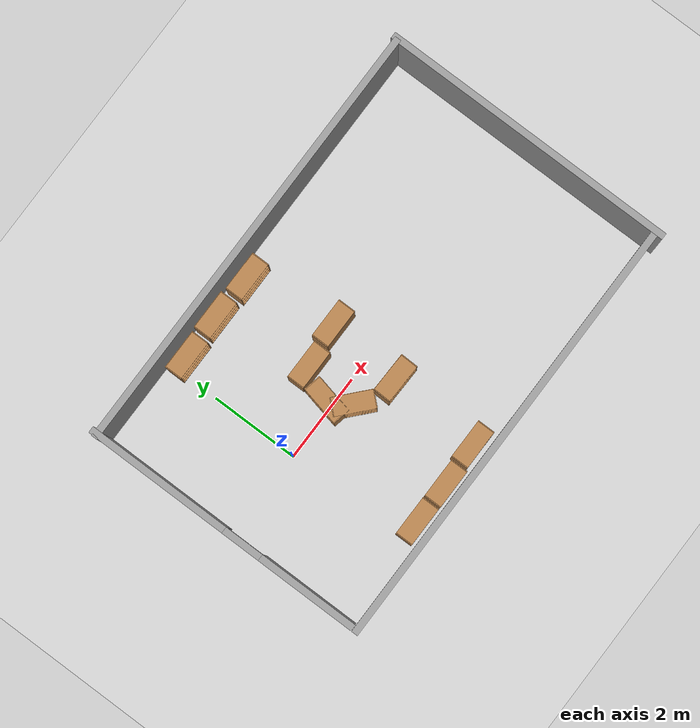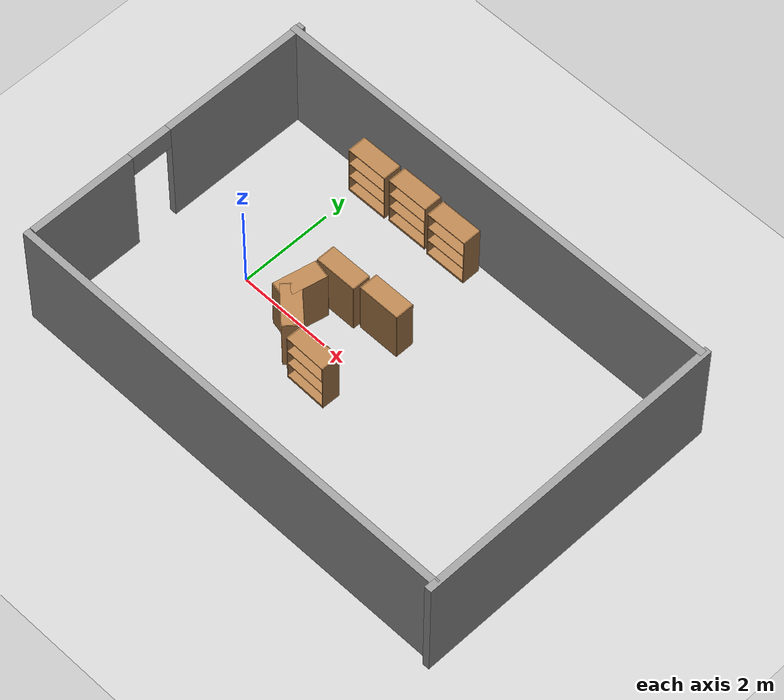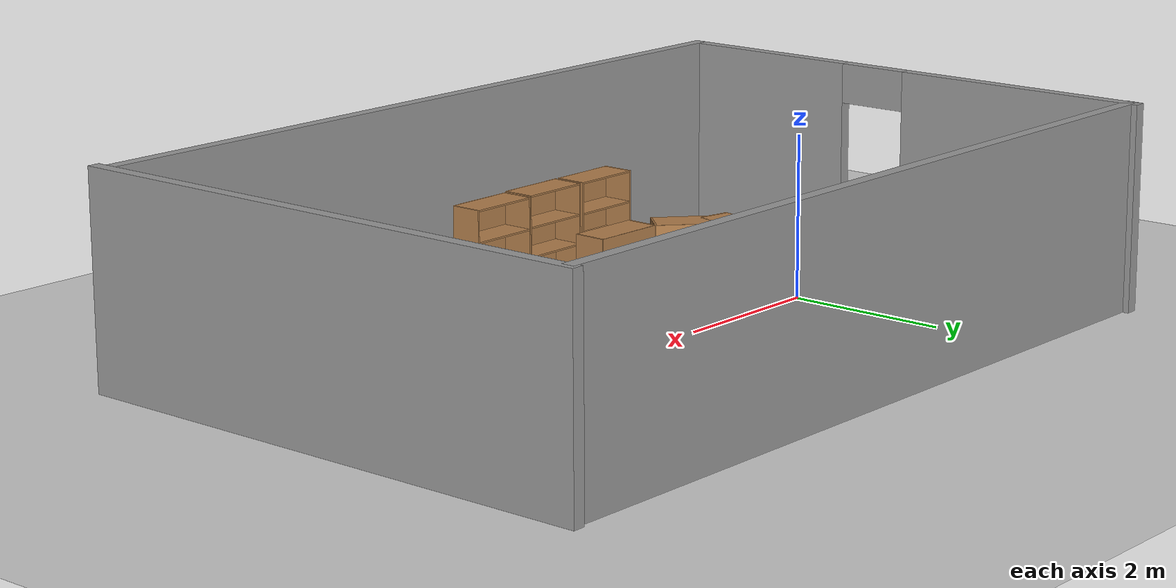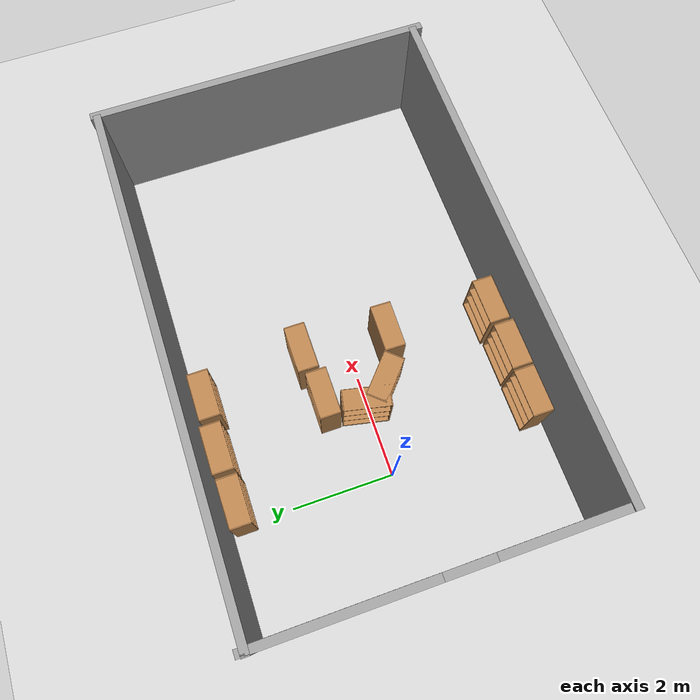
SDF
<sdf version="1.6">
 <world name="default">
  <model name="ground_plane">
   <static>1</static>
   <link name="link">
    <collision name="collision">
     <geometry><plane><normal>0 0 1</normal><size>100 100</size></plane></geometry>
     <surface><friction><ode><mu>100</mu><mu2>50</mu2></ode></friction></surface>
    </collision>
    <visual name="visual">
     <cast_shadows>0</cast_shadows>
     <geometry><plane><normal>0 0 1</normal><size>100 100</size></plane></geometry>
     <material>
      <script><uri>file://media/materials/scripts/gazebo.material</uri><name>Gazebo/Grey</name></script>
     </material>
    </visual>
   </link>
  </model>
  <model name="lab">
   <pose>2.92212 0.020842 0 0 -0 0</pose>
   <link name="Wall_27">
    <collision name="Wall_27_Collision">
     <geometry><box><size>10 0.15 2.5</size></box></geometry>
     <pose>0 0 1.25 0 -0 0</pose>
    </collision>
    <visual name="Wall_27_Visual">
     <pose>0 0 1.25 0 -0 0</pose>
     <geometry><box><size>10 0.15 2.5</size></box></geometry>
     <material>
      <script><uri>file://media/materials/scripts/gazebo.material</uri><name>Gazebo/Grey</name></script>
      <ambient>1 1 1 1</ambient>
     </material>
    </visual>
    <pose>-0.035542 3.23858 0 0 -0 0</pose>
   </link>
   <link name="Wall_31">
    <collision name="Wall_31_Collision">
     <geometry><box><size>6.75 0.15 2.5</size></box></geometry>
     <pose>0 0 1.25 0 -0 0</pose>
    </collision>
    <visual name="Wall_31_Visual">
     <pose>0 0 1.25 0 -0 0</pose>
     <geometry><box><size>6.75 0.15 2.5</size></box></geometry>
     <material>
      <script><uri>file://media/materials/scripts/gazebo.material</uri><name>Gazebo/Grey</name></script>
      <ambient>1 1 1 1</ambient>
     </material>
    </visual>
    <pose>4.96054 -0.014164 0 0 0 -1.5708</pose>
   </link>
   <link name="Wall_34">
    <collision name="Wall_34_Collision">
     <geometry><box><size>10 0.15 2.5</size></box></geometry>
     <pose>0 0 1.25 0 -0 0</pose>
    </collision>
    <visual name="Wall_34_Visual">
     <pose>0 0 1.25 0 -0 0</pose>
     <geometry><box><size>10 0.15 2.5</size></box></geometry>
     <material>
      <script><uri>file://media/materials/scripts/gazebo.material</uri><name>Gazebo/Grey</name></script>
      <ambient>1 1 1 1</ambient>
     </material>
    </visual>
    <pose>-0.020866 -3.20031 0 0 -0 3.14159</pose>
   </link>
   <link name="Wall_37">
    <pose>-4.94545 0.139164 0 0 0 -1.5708</pose>
    <visual name="Wall_37_Visual_0">
     <pose>-1.59673 0 1.25 0 -0 0</pose>
     <geometry><box><size>3.30655 0.15 2.5</size></box></geometry>
     <material>
      <script><uri>file://media/materials/scripts/gazebo.material</uri><name>Gazebo/Grey</name></script>
      <ambient>1 1 1 1</ambient>
     </material>
    </visual>
    <collision name="Wall_37_Collision_0">
     <geometry><box><size>3.30655 0.15 2.5</size></box></geometry>
     <pose>-1.59673 0 1.25 0 -0 0</pose>
    </collision>
    <visual name="Wall_37_Visual_1">
     <pose>2.10327 0 1.25 0 -0 0</pose>
     <geometry><box><size>2.29345 0.15 2.5</size></box></geometry>
     <material>
      <script><uri>file://media/materials/scripts/gazebo.material</uri><name>Gazebo/Grey</name></script>
      <ambient>1 1 1 1</ambient>
     </material>
    </visual>
    <collision name="Wall_37_Collision_1">
     <geometry><box><size>2.29345 0.15 2.5</size></box></geometry>
     <pose>2.10327 0 1.25 0 -0 0</pose>
    </collision>
    <visual name="Wall_37_Visual_2">
     <pose>0.506549 0 2.25 0 -0 0</pose>
     <geometry><box><size>0.9 0.15 0.5</size></box></geometry>
     <material>
      <script><uri>file://media/materials/scripts/gazebo.material</uri><name>Gazebo/Grey</name></script>
      <ambient>1 1 1 1</ambient>
     </material>
    </visual>
    <collision name="Wall_37_Collision_2">
     <geometry><box><size>0.9 0.15 0.5</size></box></geometry>
     <pose>0.506549 0 2.25 0 -0 0</pose>
    </collision>
   </link>
   <static>1</static>
  </model>
  <model name="bookshelf_0_clone_3">
   <static>1</static>
   <link name="link">
    <inertial><mass>1</mass></inertial>
    <collision name="back">
     <pose>0 0.005 0.6 0 -0 0</pose>
     <geometry><box><size>0.9 0.01 1.2</size></box></geometry>
    </collision>
    <visual name="visual1">
     <pose>0 0.005 0.6 0 -0 0</pose>
     <geometry><box><size>0.9 0.01 1.2</size></box></geometry>
     <material>
      <script><uri>file://media/materials/scripts/gazebo.material</uri><name>Gazebo/Wood</name></script>
     </material>
    </visual>
    <collision name="left_side">
     <pose>0.45 -0.195 0.6 0 -0 0</pose>
     <geometry><box><size>0.02 0.4 1.2</size></box></geometry>
    </collision>
    <visual name="visual2">
     <pose>0.45 -0.195 0.6 0 -0 0</pose>
     <geometry><box><size>0.02 0.4 1.2</size></box></geometry>
     <material>
      <script><uri>file://media/materials/scripts/gazebo.material</uri><name>Gazebo/Wood</name></script>
     </material>
    </visual>
    <collision name="right_side">
     <pose>-0.45 -0.195 0.6 0 -0 0</pose>
     <geometry><box><size>0.02 0.4 1.2</size></box></geometry>
    </collision>
    <visual name="visual3">
     <pose>-0.45 -0.195 0.6 0 -0 0</pose>
     <geometry><box><size>0.02 0.4 1.2</size></box></geometry>
     <material>
      <script><uri>file://media/materials/scripts/gazebo.material</uri><name>Gazebo/Wood</name></script>
     </material>
    </visual>
    <collision name="bottom">
     <pose>0 -0.195 0.03 0 -0 0</pose>
     <geometry><box><size>0.88 0.4 0.06</size></box></geometry>
    </collision>
    <visual name="visual4">
     <pose>0 -0.195 0.03 0 -0 0</pose>
     <geometry><box><size>0.88 0.4 0.06</size></box></geometry>
     <material>
      <script><uri>file://media/materials/scripts/gazebo.material</uri><name>Gazebo/Wood</name></script>
     </material>
    </visual>
    <collision name="top">
     <pose>0 -0.195 1.19 0 -0 0</pose>
     <geometry><box><size>0.88 0.4 0.02</size></box></geometry>
    </collision>
    <visual name="visual5">
     <pose>0 -0.195 1.19 0 -0 0</pose>
     <geometry><box><size>0.88 0.4 0.02</size></box></geometry>
     <material>
      <script><uri>file://media/materials/scripts/gazebo.material</uri><name>Gazebo/Wood</name></script>
     </material>
    </visual>
    <collision name="low_shelf">
     <pose>0 -0.195 0.43 0 -0 0</pose>
     <geometry><box><size>0.88 0.4 0.02</size></box></geometry>
    </collision>
    <visual name="visual6">
     <pose>0 -0.195 0.43 0 -0 0</pose>
     <geometry><box><size>0.88 0.4 0.02</size></box></geometry>
     <material>
      <script><uri>file://media/materials/scripts/gazebo.material</uri><name>Gazebo/Wood</name></script>
     </material>
    </visual>
    <collision name="high_shelf">
     <pose>0 -0.195 0.8 0 -0 0</pose>
     <geometry><box><size>0.88 0.4 0.02</size></box></geometry>
    </collision>
    <visual name="visual7">
     <pose>0 -0.195 0.8 0 -0 0</pose>
     <geometry><box><size>0.88 0.4 0.02</size></box></geometry>
     <material>
      <script><uri>file://media/materials/scripts/gazebo.material</uri><name>Gazebo/Wood</name></script>
     </material>
    </visual>
   </link>
   <pose>2.33101 3.09869 0 0 -0 0</pose>
  </model>
  <model name="bookshelf_0_clone_4">
   <static>1</static>
   <link name="link">
    <inertial><mass>1</mass></inertial>
    <collision name="back">
     <pose>0 0.005 0.6 0 -0 0</pose>
     <geometry><box><size>0.9 0.01 1.2</size></box></geometry>
    </collision>
    <visual name="visual1">
     <pose>0 0.005 0.6 0 -0 0</pose>
     <geometry><box><size>0.9 0.01 1.2</size></box></geometry>
     <material>
      <script><uri>file://media/materials/scripts/gazebo.material</uri><name>Gazebo/Wood</name></script>
     </material>
    </visual>
    <collision name="left_side">
     <pose>0.45 -0.195 0.6 0 -0 0</pose>
     <geometry><box><size>0.02 0.4 1.2</size></box></geometry>
    </collision>
    <visual name="visual2">
     <pose>0.45 -0.195 0.6 0 -0 0</pose>
     <geometry><box><size>0.02 0.4 1.2</size></box></geometry>
     <material>
      <script><uri>file://media/materials/scripts/gazebo.material</uri><name>Gazebo/Wood</name></script>
     </material>
    </visual>
    <collision name="right_side">
     <pose>-0.45 -0.195 0.6 0 -0 0</pose>
     <geometry><box><size>0.02 0.4 1.2</size></box></geometry>
    </collision>
    <visual name="visual3">
     <pose>-0.45 -0.195 0.6 0 -0 0</pose>
     <geometry><box><size>0.02 0.4 1.2</size></box></geometry>
     <material>
      <script><uri>file://media/materials/scripts/gazebo.material</uri><name>Gazebo/Wood</name></script>
     </material>
    </visual>
    <collision name="bottom">
     <pose>0 -0.195 0.03 0 -0 0</pose>
     <geometry><box><size>0.88 0.4 0.06</size></box></geometry>
    </collision>
    <visual name="visual4">
     <pose>0 -0.195 0.03 0 -0 0</pose>
     <geometry><box><size>0.88 0.4 0.06</size></box></geometry>
     <material>
      <script><uri>file://media/materials/scripts/gazebo.material</uri><name>Gazebo/Wood</name></script>
     </material>
    </visual>
    <collision name="top">
     <pose>0 -0.195 1.19 0 -0 0</pose>
     <geometry><box><size>0.88 0.4 0.02</size></box></geometry>
    </collision>
    <visual name="visual5">
     <pose>0 -0.195 1.19 0 -0 0</pose>
     <geometry><box><size>0.88 0.4 0.02</size></box></geometry>
     <material>
      <script><uri>file://media/materials/scripts/gazebo.material</uri><name>Gazebo/Wood</name></script>
     </material>
    </visual>
    <collision name="low_shelf">
     <pose>0 -0.195 0.43 0 -0 0</pose>
     <geometry><box><size>0.88 0.4 0.02</size></box></geometry>
    </collision>
    <visual name="visual6">
     <pose>0 -0.195 0.43 0 -0 0</pose>
     <geometry><box><size>0.88 0.4 0.02</size></box></geometry>
     <material>
      <script><uri>file://media/materials/scripts/gazebo.material</uri><name>Gazebo/Wood</name></script>
     </material>
    </visual>
    <collision name="high_shelf">
     <pose>0 -0.195 0.8 0 -0 0</pose>
     <geometry><box><size>0.88 0.4 0.02</size></box></geometry>
    </collision>
    <visual name="visual7">
     <pose>0 -0.195 0.8 0 -0 0</pose>
     <geometry><box><size>0.88 0.4 0.02</size></box></geometry>
     <material>
      <script><uri>file://media/materials/scripts/gazebo.material</uri><name>Gazebo/Wood</name></script>
     </material>
    </visual>
   </link>
   <pose>1.31983 3.13726 0 0 -0 0</pose>
  </model>
  <model name="bookshelf_0_clone_5">
   <static>1</static>
   <link name="link">
    <inertial><mass>1</mass></inertial>
    <collision name="back">
     <pose>0 0.005 0.6 0 -0 0</pose>
     <geometry><box><size>0.9 0.01 1.2</size></box></geometry>
    </collision>
    <visual name="visual1">
     <pose>0 0.005 0.6 0 -0 0</pose>
     <geometry><box><size>0.9 0.01 1.2</size></box></geometry>
     <material>
      <script><uri>file://media/materials/scripts/gazebo.material</uri><name>Gazebo/Wood</name></script>
     </material>
    </visual>
    <collision name="left_side">
     <pose>0.45 -0.195 0.6 0 -0 0</pose>
     <geometry><box><size>0.02 0.4 1.2</size></box></geometry>
    </collision>
    <visual name="visual2">
     <pose>0.45 -0.195 0.6 0 -0 0</pose>
     <geometry><box><size>0.02 0.4 1.2</size></box></geometry>
     <material>
      <script><uri>file://media/materials/scripts/gazebo.material</uri><name>Gazebo/Wood</name></script>
     </material>
    </visual>
    <collision name="right_side">
     <pose>-0.45 -0.195 0.6 0 -0 0</pose>
     <geometry><box><size>0.02 0.4 1.2</size></box></geometry>
    </collision>
    <visual name="visual3">
     <pose>-0.45 -0.195 0.6 0 -0 0</pose>
     <geometry><box><size>0.02 0.4 1.2</size></box></geometry>
     <material>
      <script><uri>file://media/materials/scripts/gazebo.material</uri><name>Gazebo/Wood</name></script>
     </material>
    </visual>
    <collision name="bottom">
     <pose>0 -0.195 0.03 0 -0 0</pose>
     <geometry><box><size>0.88 0.4 0.06</size></box></geometry>
    </collision>
    <visual name="visual4">
     <pose>0 -0.195 0.03 0 -0 0</pose>
     <geometry><box><size>0.88 0.4 0.06</size></box></geometry>
     <material>
      <script><uri>file://media/materials/scripts/gazebo.material</uri><name>Gazebo/Wood</name></script>
     </material>
    </visual>
    <collision name="top">
     <pose>0 -0.195 1.19 0 -0 0</pose>
     <geometry><box><size>0.88 0.4 0.02</size></box></geometry>
    </collision>
    <visual name="visual5">
     <pose>0 -0.195 1.19 0 -0 0</pose>
     <geometry><box><size>0.88 0.4 0.02</size></box></geometry>
     <material>
      <script><uri>file://media/materials/scripts/gazebo.material</uri><name>Gazebo/Wood</name></script>
     </material>
    </visual>
    <collision name="low_shelf">
     <pose>0 -0.195 0.43 0 -0 0</pose>
     <geometry><box><size>0.88 0.4 0.02</size></box></geometry>
    </collision>
    <visual name="visual6">
     <pose>0 -0.195 0.43 0 -0 0</pose>
     <geometry><box><size>0.88 0.4 0.02</size></box></geometry>
     <material>
      <script><uri>file://media/materials/scripts/gazebo.material</uri><name>Gazebo/Wood</name></script>
     </material>
    </visual>
    <collision name="high_shelf">
     <pose>0 -0.195 0.8 0 -0 0</pose>
     <geometry><box><size>0.88 0.4 0.02</size></box></geometry>
    </collision>
    <visual name="visual7">
     <pose>0 -0.195 0.8 0 -0 0</pose>
     <geometry><box><size>0.88 0.4 0.02</size></box></geometry>
     <material>
      <script><uri>file://media/materials/scripts/gazebo.material</uri><name>Gazebo/Wood</name></script>
     </material>
    </visual>
   </link>
   <pose>0.321179 3.10913 0 0 -0 0</pose>
  </model>
  <model name="bookshelf_0_clone_6_clone_clone_3">
   <static>1</static>
   <link name="link">
    <inertial><mass>1</mass></inertial>
    <collision name="back">
     <pose>0 0.005 0.6 0 -0 0</pose>
     <geometry><box><size>0.9 0.01 1.2</size></box></geometry>
    </collision>
    <visual name="visual1">
     <pose>0 0.005 0.6 0 -0 0</pose>
     <geometry><box><size>0.9 0.01 1.2</size></box></geometry>
     <material>
      <script><uri>file://media/materials/scripts/gazebo.material</uri><name>Gazebo/Wood</name></script>
     </material>
    </visual>
    <collision name="left_side">
     <pose>0.45 -0.195 0.6 0 -0 0</pose>
     <geometry><box><size>0.02 0.4 1.2</size></box></geometry>
    </collision>
    <visual name="visual2">
     <pose>0.45 -0.195 0.6 0 -0 0</pose>
     <geometry><box><size>0.02 0.4 1.2</size></box></geometry>
     <material>
      <script><uri>file://media/materials/scripts/gazebo.material</uri><name>Gazebo/Wood</name></script>
     </material>
    </visual>
    <collision name="right_side">
     <pose>-0.45 -0.195 0.6 0 -0 0</pose>
     <geometry><box><size>0.02 0.4 1.2</size></box></geometry>
    </collision>
    <visual name="visual3">
     <pose>-0.45 -0.195 0.6 0 -0 0</pose>
     <geometry><box><size>0.02 0.4 1.2</size></box></geometry>
     <material>
      <script><uri>file://media/materials/scripts/gazebo.material</uri><name>Gazebo/Wood</name></script>
     </material>
    </visual>
    <collision name="bottom">
     <pose>0 -0.195 0.03 0 -0 0</pose>
     <geometry><box><size>0.88 0.4 0.06</size></box></geometry>
    </collision>
    <visual name="visual4">
     <pose>0 -0.195 0.03 0 -0 0</pose>
     <geometry><box><size>0.88 0.4 0.06</size></box></geometry>
     <material>
      <script><uri>file://media/materials/scripts/gazebo.material</uri><name>Gazebo/Wood</name></script>
     </material>
    </visual>
    <collision name="top">
     <pose>0 -0.195 1.19 0 -0 0</pose>
     <geometry><box><size>0.88 0.4 0.02</size></box></geometry>
    </collision>
    <visual name="visual5">
     <pose>0 -0.195 1.19 0 -0 0</pose>
     <geometry><box><size>0.88 0.4 0.02</size></box></geometry>
     <material>
      <script><uri>file://media/materials/scripts/gazebo.material</uri><name>Gazebo/Wood</name></script>
     </material>
    </visual>
    <collision name="low_shelf">
     <pose>0 -0.195 0.43 0 -0 0</pose>
     <geometry><box><size>0.88 0.4 0.02</size></box></geometry>
    </collision>
    <visual name="visual6">
     <pose>0 -0.195 0.43 0 -0 0</pose>
     <geometry><box><size>0.88 0.4 0.02</size></box></geometry>
     <material>
      <script><uri>file://media/materials/scripts/gazebo.material</uri><name>Gazebo/Wood</name></script>
     </material>
    </visual>
    <collision name="high_shelf">
     <pose>0 -0.195 0.8 0 -0 0</pose>
     <geometry><box><size>0.88 0.4 0.02</size></box></geometry>
    </collision>
    <visual name="visual7">
     <pose>0 -0.195 0.8 0 -0 0</pose>
     <geometry><box><size>0.88 0.4 0.02</size></box></geometry>
     <material>
      <script><uri>file://media/materials/scripts/gazebo.material</uri><name>Gazebo/Wood</name></script>
     </material>
    </visual>
   </link>
   <pose>2.35988 -2.99644 0 0 -0 3.14</pose>
  </model>
  <model name="bookshelf_0_clone_6_clone_clone_4">
   <static>1</static>
   <link name="link">
    <inertial><mass>1</mass></inertial>
    <collision name="back">
     <pose>0 0.005 0.6 0 -0 0</pose>
     <geometry><box><size>0.9 0.01 1.2</size></box></geometry>
    </collision>
    <visual name="visual1">
     <pose>0 0.005 0.6 0 -0 0</pose>
     <geometry><box><size>0.9 0.01 1.2</size></box></geometry>
     <material>
      <script><uri>file://media/materials/scripts/gazebo.material</uri><name>Gazebo/Wood</name></script>
     </material>
    </visual>
    <collision name="left_side">
     <pose>0.45 -0.195 0.6 0 -0 0</pose>
     <geometry><box><size>0.02 0.4 1.2</size></box></geometry>
    </collision>
    <visual name="visual2">
     <pose>0.45 -0.195 0.6 0 -0 0</pose>
     <geometry><box><size>0.02 0.4 1.2</size></box></geometry>
     <material>
      <script><uri>file://media/materials/scripts/gazebo.material</uri><name>Gazebo/Wood</name></script>
     </material>
    </visual>
    <collision name="right_side">
     <pose>-0.45 -0.195 0.6 0 -0 0</pose>
     <geometry><box><size>0.02 0.4 1.2</size></box></geometry>
    </collision>
    <visual name="visual3">
     <pose>-0.45 -0.195 0.6 0 -0 0</pose>
     <geometry><box><size>0.02 0.4 1.2</size></box></geometry>
     <material>
      <script><uri>file://media/materials/scripts/gazebo.material</uri><name>Gazebo/Wood</name></script>
     </material>
    </visual>
    <collision name="bottom">
     <pose>0 -0.195 0.03 0 -0 0</pose>
     <geometry><box><size>0.88 0.4 0.06</size></box></geometry>
    </collision>
    <visual name="visual4">
     <pose>0 -0.195 0.03 0 -0 0</pose>
     <geometry><box><size>0.88 0.4 0.06</size></box></geometry>
     <material>
      <script><uri>file://media/materials/scripts/gazebo.material</uri><name>Gazebo/Wood</name></script>
     </material>
    </visual>
    <collision name="top">
     <pose>0 -0.195 1.19 0 -0 0</pose>
     <geometry><box><size>0.88 0.4 0.02</size></box></geometry>
    </collision>
    <visual name="visual5">
     <pose>0 -0.195 1.19 0 -0 0</pose>
     <geometry><box><size>0.88 0.4 0.02</size></box></geometry>
     <material>
      <script><uri>file://media/materials/scripts/gazebo.material</uri><name>Gazebo/Wood</name></script>
     </material>
    </visual>
    <collision name="low_shelf">
     <pose>0 -0.195 0.43 0 -0 0</pose>
     <geometry><box><size>0.88 0.4 0.02</size></box></geometry>
    </collision>
    <visual name="visual6">
     <pose>0 -0.195 0.43 0 -0 0</pose>
     <geometry><box><size>0.88 0.4 0.02</size></box></geometry>
     <material>
      <script><uri>file://media/materials/scripts/gazebo.material</uri><name>Gazebo/Wood</name></script>
     </material>
    </visual>
    <collision name="high_shelf">
     <pose>0 -0.195 0.8 0 -0 0</pose>
     <geometry><box><size>0.88 0.4 0.02</size></box></geometry>
    </collision>
    <visual name="visual7">
     <pose>0 -0.195 0.8 0 -0 0</pose>
     <geometry><box><size>0.88 0.4 0.02</size></box></geometry>
     <material>
      <script><uri>file://media/materials/scripts/gazebo.material</uri><name>Gazebo/Wood</name></script>
     </material>
    </visual>
   </link>
   <pose>1.39804 -3.03727 0 0 -0 3.14</pose>
  </model>
  <model name="bookshelf_0_clone_6_clone_clone_5">
   <static>1</static>
   <link name="link">
    <inertial><mass>1</mass></inertial>
    <collision name="back">
     <pose>0 0.005 0.6 0 -0 0</pose>
     <geometry><box><size>0.9 0.01 1.2</size></box></geometry>
    </collision>
    <visual name="visual1">
     <pose>0 0.005 0.6 0 -0 0</pose>
     <geometry><box><size>0.9 0.01 1.2</size></box></geometry>
     <material>
      <script><uri>file://media/materials/scripts/gazebo.material</uri><name>Gazebo/Wood</name></script>
     </material>
    </visual>
    <collision name="left_side">
     <pose>0.45 -0.195 0.6 0 -0 0</pose>
     <geometry><box><size>0.02 0.4 1.2</size></box></geometry>
    </collision>
    <visual name="visual2">
     <pose>0.45 -0.195 0.6 0 -0 0</pose>
     <geometry><box><size>0.02 0.4 1.2</size></box></geometry>
     <material>
      <script><uri>file://media/materials/scripts/gazebo.material</uri><name>Gazebo/Wood</name></script>
     </material>
    </visual>
    <collision name="right_side">
     <pose>-0.45 -0.195 0.6 0 -0 0</pose>
     <geometry><box><size>0.02 0.4 1.2</size></box></geometry>
    </collision>
    <visual name="visual3">
     <pose>-0.45 -0.195 0.6 0 -0 0</pose>
     <geometry><box><size>0.02 0.4 1.2</size></box></geometry>
     <material>
      <script><uri>file://media/materials/scripts/gazebo.material</uri><name>Gazebo/Wood</name></script>
     </material>
    </visual>
    <collision name="bottom">
     <pose>0 -0.195 0.03 0 -0 0</pose>
     <geometry><box><size>0.88 0.4 0.06</size></box></geometry>
    </collision>
    <visual name="visual4">
     <pose>0 -0.195 0.03 0 -0 0</pose>
     <geometry><box><size>0.88 0.4 0.06</size></box></geometry>
     <material>
      <script><uri>file://media/materials/scripts/gazebo.material</uri><name>Gazebo/Wood</name></script>
     </material>
    </visual>
    <collision name="top">
     <pose>0 -0.195 1.19 0 -0 0</pose>
     <geometry><box><size>0.88 0.4 0.02</size></box></geometry>
    </collision>
    <visual name="visual5">
     <pose>0 -0.195 1.19 0 -0 0</pose>
     <geometry><box><size>0.88 0.4 0.02</size></box></geometry>
     <material>
      <script><uri>file://media/materials/scripts/gazebo.material</uri><name>Gazebo/Wood</name></script>
     </material>
    </visual>
    <collision name="low_shelf">
     <pose>0 -0.195 0.43 0 -0 0</pose>
     <geometry><box><size>0.88 0.4 0.02</size></box></geometry>
    </collision>
    <visual name="visual6">
     <pose>0 -0.195 0.43 0 -0 0</pose>
     <geometry><box><size>0.88 0.4 0.02</size></box></geometry>
     <material>
      <script><uri>file://media/materials/scripts/gazebo.material</uri><name>Gazebo/Wood</name></script>
     </material>
    </visual>
    <collision name="high_shelf">
     <pose>0 -0.195 0.8 0 -0 0</pose>
     <geometry><box><size>0.88 0.4 0.02</size></box></geometry>
    </collision>
    <visual name="visual7">
     <pose>0 -0.195 0.8 0 -0 0</pose>
     <geometry><box><size>0.88 0.4 0.02</size></box></geometry>
     <material>
      <script><uri>file://media/materials/scripts/gazebo.material</uri><name>Gazebo/Wood</name></script>
     </material>
    </visual>
   </link>
   <pose>0.446634 -3.03131 0 0 -0 3.14</pose>
  </model>
  <model name="bookshelf_0_clone_6_clone_clone_10">
   <static>1</static>
   <link name="link">
    <inertial><mass>1</mass></inertial>
    <collision name="back">
     <pose>0 0.005 0.6 0 -0 0</pose>
     <geometry><box><size>0.9 0.01 1.2</size></box></geometry>
    </collision>
    <visual name="visual1">
     <pose>0 0.005 0.6 0 -0 0</pose>
     <geometry><box><size>0.9 0.01 1.2</size></box></geometry>
     <material>
      <script><uri>file://media/materials/scripts/gazebo.material</uri><name>Gazebo/Wood</name></script>
     </material>
    </visual>
    <collision name="left_side">
     <pose>0.45 -0.195 0.6 0 -0 0</pose>
     <geometry><box><size>0.02 0.4 1.2</size></box></geometry>
    </collision>
    <visual name="visual2">
     <pose>0.45 -0.195 0.6 0 -0 0</pose>
     <geometry><box><size>0.02 0.4 1.2</size></box></geometry>
     <material>
      <script><uri>file://media/materials/scripts/gazebo.material</uri><name>Gazebo/Wood</name></script>
     </material>
    </visual>
    <collision name="right_side">
     <pose>-0.45 -0.195 0.6 0 -0 0</pose>
     <geometry><box><size>0.02 0.4 1.2</size></box></geometry>
    </collision>
    <visual name="visual3">
     <pose>-0.45 -0.195 0.6 0 -0 0</pose>
     <geometry><box><size>0.02 0.4 1.2</size></box></geometry>
     <material>
      <script><uri>file://media/materials/scripts/gazebo.material</uri><name>Gazebo/Wood</name></script>
     </material>
    </visual>
    <collision name="bottom">
     <pose>0 -0.195 0.03 0 -0 0</pose>
     <geometry><box><size>0.88 0.4 0.06</size></box></geometry>
    </collision>
    <visual name="visual4">
     <pose>0 -0.195 0.03 0 -0 0</pose>
     <geometry><box><size>0.88 0.4 0.06</size></box></geometry>
     <material>
      <script><uri>file://media/materials/scripts/gazebo.material</uri><name>Gazebo/Wood</name></script>
     </material>
    </visual>
    <collision name="top">
     <pose>0 -0.195 1.19 0 -0 0</pose>
     <geometry><box><size>0.88 0.4 0.02</size></box></geometry>
    </collision>
    <visual name="visual5">
     <pose>0 -0.195 1.19 0 -0 0</pose>
     <geometry><box><size>0.88 0.4 0.02</size></box></geometry>
     <material>
      <script><uri>file://media/materials/scripts/gazebo.material</uri><name>Gazebo/Wood</name></script>
     </material>
    </visual>
    <collision name="low_shelf">
     <pose>0 -0.195 0.43 0 -0 0</pose>
     <geometry><box><size>0.88 0.4 0.02</size></box></geometry>
    </collision>
    <visual name="visual6">
     <pose>0 -0.195 0.43 0 -0 0</pose>
     <geometry><box><size>0.88 0.4 0.02</size></box></geometry>
     <material>
      <script><uri>file://media/materials/scripts/gazebo.material</uri><name>Gazebo/Wood</name></script>
     </material>
    </visual>
    <collision name="high_shelf">
     <pose>0 -0.195 0.8 0 -0 0</pose>
     <geometry><box><size>0.88 0.4 0.02</size></box></geometry>
    </collision>
    <visual name="visual7">
     <pose>0 -0.195 0.8 0 -0 0</pose>
     <geometry><box><size>0.88 0.4 0.02</size></box></geometry>
     <material>
      <script><uri>file://media/materials/scripts/gazebo.material</uri><name>Gazebo/Wood</name></script>
     </material>
    </visual>
   </link>
   <pose>2.62281 0.736206 0 0 -0 3.14</pose>
  </model>
  <model name="bookshelf_0_clone_6_clone_clone_11">
   <static>1</static>
   <link name="link">
    <inertial><mass>1</mass></inertial>
    <collision name="back">
     <pose>0 0.005 0.6 0 -0 0</pose>
     <geometry><box><size>0.9 0.01 1.2</size></box></geometry>
    </collision>
    <visual name="visual1">
     <pose>0 0.005 0.6 0 -0 0</pose>
     <geometry><box><size>0.9 0.01 1.2</size></box></geometry>
     <material>
      <script><uri>file://media/materials/scripts/gazebo.material</uri><name>Gazebo/Wood</name></script>
     </material>
    </visual>
    <collision name="left_side">
     <pose>0.45 -0.195 0.6 0 -0 0</pose>
     <geometry><box><size>0.02 0.4 1.2</size></box></geometry>
    </collision>
    <visual name="visual2">
     <pose>0.45 -0.195 0.6 0 -0 0</pose>
     <geometry><box><size>0.02 0.4 1.2</size></box></geometry>
     <material>
      <script><uri>file://media/materials/scripts/gazebo.material</uri><name>Gazebo/Wood</name></script>
     </material>
    </visual>
    <collision name="right_side">
     <pose>-0.45 -0.195 0.6 0 -0 0</pose>
     <geometry><box><size>0.02 0.4 1.2</size></box></geometry>
    </collision>
    <visual name="visual3">
     <pose>-0.45 -0.195 0.6 0 -0 0</pose>
     <geometry><box><size>0.02 0.4 1.2</size></box></geometry>
     <material>
      <script><uri>file://media/materials/scripts/gazebo.material</uri><name>Gazebo/Wood</name></script>
     </material>
    </visual>
    <collision name="bottom">
     <pose>0 -0.195 0.03 0 -0 0</pose>
     <geometry><box><size>0.88 0.4 0.06</size></box></geometry>
    </collision>
    <visual name="visual4">
     <pose>0 -0.195 0.03 0 -0 0</pose>
     <geometry><box><size>0.88 0.4 0.06</size></box></geometry>
     <material>
      <script><uri>file://media/materials/scripts/gazebo.material</uri><name>Gazebo/Wood</name></script>
     </material>
    </visual>
    <collision name="top">
     <pose>0 -0.195 1.19 0 -0 0</pose>
     <geometry><box><size>0.88 0.4 0.02</size></box></geometry>
    </collision>
    <visual name="visual5">
     <pose>0 -0.195 1.19 0 -0 0</pose>
     <geometry><box><size>0.88 0.4 0.02</size></box></geometry>
     <material>
      <script><uri>file://media/materials/scripts/gazebo.material</uri><name>Gazebo/Wood</name></script>
     </material>
    </visual>
    <collision name="low_shelf">
     <pose>0 -0.195 0.43 0 -0 0</pose>
     <geometry><box><size>0.88 0.4 0.02</size></box></geometry>
    </collision>
    <visual name="visual6">
     <pose>0 -0.195 0.43 0 -0 0</pose>
     <geometry><box><size>0.88 0.4 0.02</size></box></geometry>
     <material>
      <script><uri>file://media/materials/scripts/gazebo.material</uri><name>Gazebo/Wood</name></script>
     </material>
    </visual>
    <collision name="high_shelf">
     <pose>0 -0.195 0.8 0 -0 0</pose>
     <geometry><box><size>0.88 0.4 0.02</size></box></geometry>
    </collision>
    <visual name="visual7">
     <pose>0 -0.195 0.8 0 -0 0</pose>
     <geometry><box><size>0.88 0.4 0.02</size></box></geometry>
     <material>
      <script><uri>file://media/materials/scripts/gazebo.material</uri><name>Gazebo/Wood</name></script>
     </material>
    </visual>
   </link>
   <pose>1.65571 0.627798 0 0 -0 3.14</pose>
  </model>
  <model name="bookshelf_0_clone_6_clone_clone_13_clone">
   <static>1</static>
   <link name="link">
    <inertial><mass>1</mass></inertial>
    <collision name="back">
     <pose>0 0.005 0.6 0 -0 0</pose>
     <geometry><box><size>0.9 0.01 1.2</size></box></geometry>
    </collision>
    <visual name="visual1">
     <pose>0 0.005 0.6 0 -0 0</pose>
     <geometry><box><size>0.9 0.01 1.2</size></box></geometry>
     <material>
      <script><uri>file://media/materials/scripts/gazebo.material</uri><name>Gazebo/Wood</name></script>
     </material>
    </visual>
    <collision name="left_side">
     <pose>0.45 -0.195 0.6 0 -0 0</pose>
     <geometry><box><size>0.02 0.4 1.2</size></box></geometry>
    </collision>
    <visual name="visual2">
     <pose>0.45 -0.195 0.6 0 -0 0</pose>
     <geometry><box><size>0.02 0.4 1.2</size></box></geometry>
     <material>
      <script><uri>file://media/materials/scripts/gazebo.material</uri><name>Gazebo/Wood</name></script>
     </material>
    </visual>
    <collision name="right_side">
     <pose>-0.45 -0.195 0.6 0 -0 0</pose>
     <geometry><box><size>0.02 0.4 1.2</size></box></geometry>
    </collision>
    <visual name="visual3">
     <pose>-0.45 -0.195 0.6 0 -0 0</pose>
     <geometry><box><size>0.02 0.4 1.2</size></box></geometry>
     <material>
      <script><uri>file://media/materials/scripts/gazebo.material</uri><name>Gazebo/Wood</name></script>
     </material>
    </visual>
    <collision name="bottom">
     <pose>0 -0.195 0.03 0 -0 0</pose>
     <geometry><box><size>0.88 0.4 0.06</size></box></geometry>
    </collision>
    <visual name="visual4">
     <pose>0 -0.195 0.03 0 -0 0</pose>
     <geometry><box><size>0.88 0.4 0.06</size></box></geometry>
     <material>
      <script><uri>file://media/materials/scripts/gazebo.material</uri><name>Gazebo/Wood</name></script>
     </material>
    </visual>
    <collision name="top">
     <pose>0 -0.195 1.19 0 -0 0</pose>
     <geometry><box><size>0.88 0.4 0.02</size></box></geometry>
    </collision>
    <visual name="visual5">
     <pose>0 -0.195 1.19 0 -0 0</pose>
     <geometry><box><size>0.88 0.4 0.02</size></box></geometry>
     <material>
      <script><uri>file://media/materials/scripts/gazebo.material</uri><name>Gazebo/Wood</name></script>
     </material>
    </visual>
    <collision name="low_shelf">
     <pose>0 -0.195 0.43 0 -0 0</pose>
     <geometry><box><size>0.88 0.4 0.02</size></box></geometry>
    </collision>
    <visual name="visual6">
     <pose>0 -0.195 0.43 0 -0 0</pose>
     <geometry><box><size>0.88 0.4 0.02</size></box></geometry>
     <material>
      <script><uri>file://media/materials/scripts/gazebo.material</uri><name>Gazebo/Wood</name></script>
     </material>
    </visual>
    <collision name="high_shelf">
     <pose>0 -0.195 0.8 0 -0 0</pose>
     <geometry><box><size>0.88 0.4 0.02</size></box></geometry>
    </collision>
    <visual name="visual7">
     <pose>0 -0.195 0.8 0 -0 0</pose>
     <geometry><box><size>0.88 0.4 0.02</size></box></geometry>
     <material>
      <script><uri>file://media/materials/scripts/gazebo.material</uri><name>Gazebo/Wood</name></script>
     </material>
    </visual>
   </link>
   <pose>1.49314 0.060549 0 0 0 -1.78319</pose>
  </model>
  <model name="bookshelf_0_clone_6_clone_clone_13_clone_clone">
   <static>1</static>
   <link name="link">
    <inertial><mass>1</mass></inertial>
    <collision name="back">
     <pose>0 0.005 0.6 0 -0 0</pose>
     <geometry><box><size>0.9 0.01 1.2</size></box></geometry>
    </collision>
    <visual name="visual1">
     <pose>0 0.005 0.6 0 -0 0</pose>
     <geometry><box><size>0.9 0.01 1.2</size></box></geometry>
     <material>
      <script><uri>file://media/materials/scripts/gazebo.material</uri><name>Gazebo/Wood</name></script>
     </material>
    </visual>
    <collision name="left_side">
     <pose>0.45 -0.195 0.6 0 -0 0</pose>
     <geometry><box><size>0.02 0.4 1.2</size></box></geometry>
    </collision>
    <visual name="visual2">
     <pose>0.45 -0.195 0.6 0 -0 0</pose>
     <geometry><box><size>0.02 0.4 1.2</size></box></geometry>
     <material>
      <script><uri>file://media/materials/scripts/gazebo.material</uri><name>Gazebo/Wood</name></script>
     </material>
    </visual>
    <collision name="right_side">
     <pose>-0.45 -0.195 0.6 0 -0 0</pose>
     <geometry><box><size>0.02 0.4 1.2</size></box></geometry>
    </collision>
    <visual name="visual3">
     <pose>-0.45 -0.195 0.6 0 -0 0</pose>
     <geometry><box><size>0.02 0.4 1.2</size></box></geometry>
     <material>
      <script><uri>file://media/materials/scripts/gazebo.material</uri><name>Gazebo/Wood</name></script>
     </material>
    </visual>
    <collision name="bottom">
     <pose>0 -0.195 0.03 0 -0 0</pose>
     <geometry><box><size>0.88 0.4 0.06</size></box></geometry>
    </collision>
    <visual name="visual4">
     <pose>0 -0.195 0.03 0 -0 0</pose>
     <geometry><box><size>0.88 0.4 0.06</size></box></geometry>
     <material>
      <script><uri>file://media/materials/scripts/gazebo.material</uri><name>Gazebo/Wood</name></script>
     </material>
    </visual>
    <collision name="top">
     <pose>0 -0.195 1.19 0 -0 0</pose>
     <geometry><box><size>0.88 0.4 0.02</size></box></geometry>
    </collision>
    <visual name="visual5">
     <pose>0 -0.195 1.19 0 -0 0</pose>
     <geometry><box><size>0.88 0.4 0.02</size></box></geometry>
     <material>
      <script><uri>file://media/materials/scripts/gazebo.material</uri><name>Gazebo/Wood</name></script>
     </material>
    </visual>
    <collision name="low_shelf">
     <pose>0 -0.195 0.43 0 -0 0</pose>
     <geometry><box><size>0.88 0.4 0.02</size></box></geometry>
    </collision>
    <visual name="visual6">
     <pose>0 -0.195 0.43 0 -0 0</pose>
     <geometry><box><size>0.88 0.4 0.02</size></box></geometry>
     <material>
      <script><uri>file://media/materials/scripts/gazebo.material</uri><name>Gazebo/Wood</name></script>
     </material>
    </visual>
    <collision name="high_shelf">
     <pose>0 -0.195 0.8 0 -0 0</pose>
     <geometry><box><size>0.88 0.4 0.02</size></box></geometry>
    </collision>
    <visual name="visual7">
     <pose>0 -0.195 0.8 0 -0 0</pose>
     <geometry><box><size>0.88 0.4 0.02</size></box></geometry>
     <material>
      <script><uri>file://media/materials/scripts/gazebo.material</uri><name>Gazebo/Wood</name></script>
     </material>
    </visual>
   </link>
   <pose>2.4971 -0.55122 0 0 0 -0.024715</pose>
  </model>
  <model name="bookshelf_0_clone_6_clone_clone_13_clone_clone_clone">
   <static>1</static>
   <link name="link">
    <inertial><mass>1</mass></inertial>
    <collision name="back">
     <pose>0 0.005 0.6 0 -0 0</pose>
     <geometry><box><size>0.9 0.01 1.2</size></box></geometry>
    </collision>
    <visual name="visual1">
     <pose>0 0.005 0.6 0 -0 0</pose>
     <geometry><box><size>0.9 0.01 1.2</size></box></geometry>
     <material>
      <script><uri>file://media/materials/scripts/gazebo.material</uri><name>Gazebo/Wood</name></script>
     </material>
    </visual>
    <collision name="left_side">
     <pose>0.45 -0.195 0.6 0 -0 0</pose>
     <geometry><box><size>0.02 0.4 1.2</size></box></geometry>
    </collision>
    <visual name="visual2">
     <pose>0.45 -0.195 0.6 0 -0 0</pose>
     <geometry><box><size>0.02 0.4 1.2</size></box></geometry>
     <material>
      <script><uri>file://media/materials/scripts/gazebo.material</uri><name>Gazebo/Wood</name></script>
     </material>
    </visual>
    <collision name="right_side">
     <pose>-0.45 -0.195 0.6 0 -0 0</pose>
     <geometry><box><size>0.02 0.4 1.2</size></box></geometry>
    </collision>
    <visual name="visual3">
     <pose>-0.45 -0.195 0.6 0 -0 0</pose>
     <geometry><box><size>0.02 0.4 1.2</size></box></geometry>
     <material>
      <script><uri>file://media/materials/scripts/gazebo.material</uri><name>Gazebo/Wood</name></script>
     </material>
    </visual>
    <collision name="bottom">
     <pose>0 -0.195 0.03 0 -0 0</pose>
     <geometry><box><size>0.88 0.4 0.06</size></box></geometry>
    </collision>
    <visual name="visual4">
     <pose>0 -0.195 0.03 0 -0 0</pose>
     <geometry><box><size>0.88 0.4 0.06</size></box></geometry>
     <material>
      <script><uri>file://media/materials/scripts/gazebo.material</uri><name>Gazebo/Wood</name></script>
     </material>
    </visual>
    <collision name="top">
     <pose>0 -0.195 1.19 0 -0 0</pose>
     <geometry><box><size>0.88 0.4 0.02</size></box></geometry>
    </collision>
    <visual name="visual5">
     <pose>0 -0.195 1.19 0 -0 0</pose>
     <geometry><box><size>0.88 0.4 0.02</size></box></geometry>
     <material>
      <script><uri>file://media/materials/scripts/gazebo.material</uri><name>Gazebo/Wood</name></script>
     </material>
    </visual>
    <collision name="low_shelf">
     <pose>0 -0.195 0.43 0 -0 0</pose>
     <geometry><box><size>0.88 0.4 0.02</size></box></geometry>
    </collision>
    <visual name="visual6">
     <pose>0 -0.195 0.43 0 -0 0</pose>
     <geometry><box><size>0.88 0.4 0.02</size></box></geometry>
     <material>
      <script><uri>file://media/materials/scripts/gazebo.material</uri><name>Gazebo/Wood</name></script>
     </material>
    </visual>
    <collision name="high_shelf">
     <pose>0 -0.195 0.8 0 -0 0</pose>
     <geometry><box><size>0.88 0.4 0.02</size></box></geometry>
    </collision>
    <visual name="visual7">
     <pose>0 -0.195 0.8 0 -0 0</pose>
     <geometry><box><size>0.88 0.4 0.02</size></box></geometry>
     <material>
      <script><uri>file://media/materials/scripts/gazebo.material</uri><name>Gazebo/Wood</name></script>
     </material>
    </visual>
   </link>
   <pose>1.70888 -0.22489 0 0 0 -0.732484</pose>
  </model>
 </world>
</sdf>
